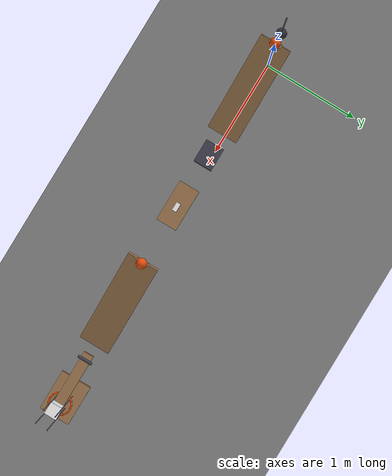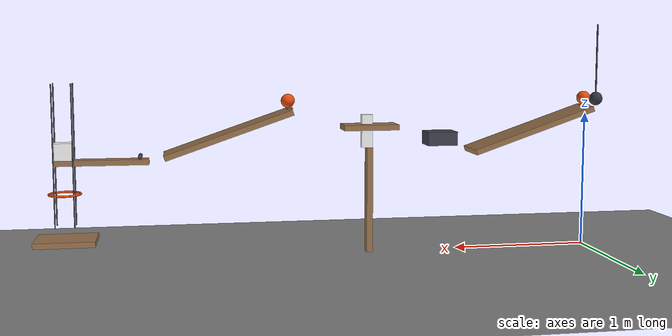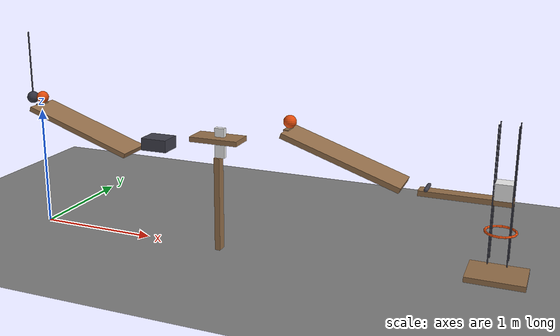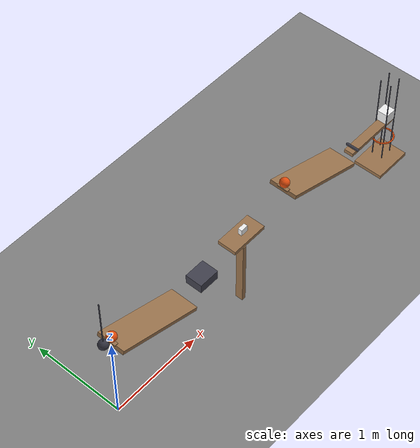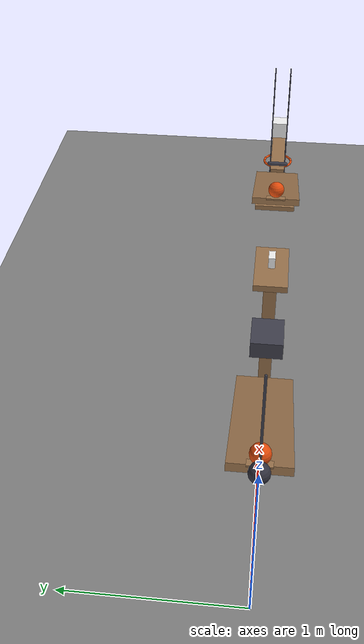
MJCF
<mujoco model="cascade_with_overhanging_domino_support">
  <compiler angle="radian"/>
  <option timestep="0.002"/>
  <worldbody>
    <geom name="floor" type="plane" size="10 10 0.1" friction="0.68 0.005 0.0001"/>
    <body name="ramp1">
      <geom name="ramp1" type="box" pos="0.44261 0 0.885734" size="0.475 0.15 0.02" euler="0 0.331612 0" friction="0.68 0.005 0.0001" solref="0.01 1" rgba="0.6 0.45 0.3 1"/>
    </body>
    <body name="ball1 starting ledge">
      <geom name="ball1 starting ledge" type="box" pos="0.008 0 1.06" size="0.019 0.06 0.005" friction="0.68 0.005 0.0001" solref="0.01 1" rgba="0.6 0.45 0.3 1"/>
    </body>
    <body name="ball1" pos="0.016278 0 1.115">
      <freejoint/>
      <geom name="ball1" type="sphere" pos="0 0 0" size="0.05" mass="0.2" condim="6" friction="0.68 0.005 0.0001" solref="0.01 1" rgba="0.9 0.3 0.05 1"/>
    </body>
    <body name="pendulum1" pos="-0.083722 0 1.65657">
      <joint name="pendulum1_hinge" type="hinge" pos="0 0 0" axis="0 1 0" limited="true" range="-1.39626 0.959931" damping="0.04"/>
      <geom name="pendulum1" type="sphere" pos="0 0 -0.55" size="0.05" mass="0.35" friction="0.68 0.005 0.0001" solref="0.01 1" rgba="0.2 0.2 0.25 1"/>
      <geom name="pendulum1 rod" type="capsule" size="0.006" fromto="0 0 0 0 0 -0.5" mass="0.05" friction="0.68 0.005 0.0001" solref="0.01 1" rgba="0.25 0.25 0.3 1"/>
    </body>
    <body name="cart1" pos="1.12824 100 0.83">
      <joint name="cart1_guide_approximation" type="hinge" pos="0 0 0" axis="0 0 1" limited="true" range="0 0.0043" damping="2000"/>
      <geom name="cart1" type="box" pos="0 -100 0" size="0.11 0.09 0.05" mass="0.5" friction="0.68 0.005 0.0001" solref="0.01 1" rgba="0.25 0.25 0.3 1"/>
    </body>
    <body name="domino support">
      <geom name="domino support" type="box" pos="1.66074 0 0.385" size="0.0225 0.04 0.385" friction="0.68 0.005 0.0001" solref="0.01 1" rgba="0.6 0.45 0.3 1"/>
    </body>
    <body name="domino1" pos="1.67824 0 0.89">
      <freejoint/>
      <geom name="domino1" type="box" pos="0 0 0" size="0.04 0.02 0.12" mass="0.25" friction="0.68 0.005 0.0001" solref="0.01 1" rgba="0.95 0.95 0.95 1"/>
    </body>
    <body name="flap1" pos="1.85824 0 0.92">
      <joint name="flap1_hinge" type="hinge" pos="0 0 0" axis="0 1 0" limited="true" range="1.55334 2.68781" damping="0.04"/>
      <geom name="flap1" type="box" pos="-0.2 0 0" size="0.2 0.1 0.02" mass="0.3" friction="0.68 0.005 0.0001" solref="0.01 1" rgba="0.6 0.45 0.3 1"/>
    </body>
    <body name="ramp2">
      <geom name="ramp2" type="box" pos="2.68133 0 0.885734" size="0.475 0.15 0.02" euler="0 0.331612 0" friction="0.68 0.005 0.0001" solref="0.01 1" rgba="0.6 0.45 0.3 1"/>
    </body>
    <body name="ball2 starting ledge">
      <geom name="ball2 starting ledge" type="box" pos="2.243 0 1.06" size="0.019 0.06 0.005" friction="0.68 0.005 0.0001" solref="0.01 1" rgba="0.6 0.45 0.3 1"/>
    </body>
    <body name="ball2" pos="2.255 0 1.115">
      <freejoint/>
      <geom name="ball2" type="sphere" pos="0 0 0" size="0.05" mass="0.2" condim="6" friction="0.68 0.005 0.0001" solref="0.01 1" rgba="0.9 0.3 0.05 1"/>
    </body>
    <body name="seesaw1" pos="3.56196 0 0.7">
      <joint name="seesaw1_hinge" type="hinge" pos="0 0 0" axis="0 1 0" limited="true" range="-0.698132 0" stiffness="0.136" springref="-6.28319" damping="0.04"/>
      <geom name="seesaw1" type="box" pos="0 0 0" size="0.325 0.05 0.02" mass="0.55" friction="0.68 0.005 0.0001" solref="0.01 1" rgba="0.6 0.45 0.3 1"/>
      <geom name="seesaw catch lip" type="capsule" size="0.015" fromto="-0.265 0.06 0.035 -0.265 -0.06 0.035" mass="0.001" friction="0.68 0.005 0.0001" solref="0.01 1" rgba="0.25 0.25 0.3 1"/>
    </body>
    <body name="block1" pos="3.81696 0 0.78">
      <freejoint/>
      <geom name="block1" type="box" pos="0 0 0" size="0.06 0.06 0.06" mass="0.35" friction="0.68 0.005 0.0001" solref="0.01 1" rgba="0.95 0.95 0.95 1"/>
    </body>
    <body name="block guide near left">
      <geom name="block guide near left" type="box" pos="3.75096 0.058 0.75" size="0.004 0.004 0.5" friction="0.68 0.005 0.0001" solref="0.01 1" rgba="0.25 0.25 0.3 1"/>
    </body>
    <body name="block guide near right">
      <geom name="block guide near right" type="box" pos="3.75096 -0.058 0.75" size="0.004 0.004 0.5" friction="0.68 0.005 0.0001" solref="0.01 1" rgba="0.25 0.25 0.3 1"/>
    </body>
    <body name="block guide far left">
      <geom name="block guide far left" type="box" pos="3.88296 0.058 0.75" size="0.004 0.004 0.5" friction="0.68 0.005 0.0001" solref="0.01 1" rgba="0.25 0.25 0.3 1"/>
    </body>
    <body name="block guide far right">
      <geom name="block guide far right" type="box" pos="3.88296 -0.058 0.75" size="0.004 0.004 0.5" friction="0.68 0.005 0.0001" solref="0.01 1" rgba="0.25 0.25 0.3 1"/>
    </body>
    <body name="ring1">
      <geom name="ring1_00" type="capsule" size="0.008" fromto="3.92496 0 0.48 3.91674 0.0413298 0.48" friction="0.68 0.005 0.0001" solref="0.01 1" rgba="0.9 0.3 0.05 1"/>
      <geom name="ring1_01" type="capsule" size="0.008" fromto="3.91674 0.0413298 0.48 3.89333 0.0763675 0.48" friction="0.68 0.005 0.0001" solref="0.01 1" rgba="0.9 0.3 0.05 1"/>
      <geom name="ring1_02" type="capsule" size="0.008" fromto="3.89333 0.0763675 0.48 3.85829 0.099779 0.48" friction="0.68 0.005 0.0001" solref="0.01 1" rgba="0.9 0.3 0.05 1"/>
      <geom name="ring1_03" type="capsule" size="0.008" fromto="3.85829 0.099779 0.48 3.81696 0.108 0.48" friction="0.68 0.005 0.0001" solref="0.01 1" rgba="0.9 0.3 0.05 1"/>
      <geom name="ring1_04" type="capsule" size="0.008" fromto="3.81696 0.108 0.48 3.77563 0.099779 0.48" friction="0.68 0.005 0.0001" solref="0.01 1" rgba="0.9 0.3 0.05 1"/>
      <geom name="ring1_05" type="capsule" size="0.008" fromto="3.77563 0.099779 0.48 3.7406 0.0763675 0.48" friction="0.68 0.005 0.0001" solref="0.01 1" rgba="0.9 0.3 0.05 1"/>
      <geom name="ring1_06" type="capsule" size="0.008" fromto="3.7406 0.0763675 0.48 3.71718 0.0413298 0.48" friction="0.68 0.005 0.0001" solref="0.01 1" rgba="0.9 0.3 0.05 1"/>
      <geom name="ring1_07" type="capsule" size="0.008" fromto="3.71718 0.0413298 0.48 3.70896 1.32262e-17 0.48" friction="0.68 0.005 0.0001" solref="0.01 1" rgba="0.9 0.3 0.05 1"/>
      <geom name="ring1_08" type="capsule" size="0.008" fromto="3.70896 1.32262e-17 0.48 3.71718 -0.0413298 0.48" friction="0.68 0.005 0.0001" solref="0.01 1" rgba="0.9 0.3 0.05 1"/>
      <geom name="ring1_09" type="capsule" size="0.008" fromto="3.71718 -0.0413298 0.48 3.7406 -0.0763675 0.48" friction="0.68 0.005 0.0001" solref="0.01 1" rgba="0.9 0.3 0.05 1"/>
      <geom name="ring1_10" type="capsule" size="0.008" fromto="3.7406 -0.0763675 0.48 3.77563 -0.099779 0.48" friction="0.68 0.005 0.0001" solref="0.01 1" rgba="0.9 0.3 0.05 1"/>
      <geom name="ring1_11" type="capsule" size="0.008" fromto="3.77563 -0.099779 0.48 3.81696 -0.108 0.48" friction="0.68 0.005 0.0001" solref="0.01 1" rgba="0.9 0.3 0.05 1"/>
      <geom name="ring1_12" type="capsule" size="0.008" fromto="3.81696 -0.108 0.48 3.85829 -0.099779 0.48" friction="0.68 0.005 0.0001" solref="0.01 1" rgba="0.9 0.3 0.05 1"/>
      <geom name="ring1_13" type="capsule" size="0.008" fromto="3.85829 -0.099779 0.48 3.89333 -0.0763675 0.48" friction="0.68 0.005 0.0001" solref="0.01 1" rgba="0.9 0.3 0.05 1"/>
      <geom name="ring1_14" type="capsule" size="0.008" fromto="3.89333 -0.0763675 0.48 3.91674 -0.0413298 0.48" friction="0.68 0.005 0.0001" solref="0.01 1" rgba="0.9 0.3 0.05 1"/>
      <geom name="ring1_15" type="capsule" size="0.008" fromto="3.91674 -0.0413298 0.48 3.92496 -2.64524e-17 0.48" friction="0.68 0.005 0.0001" solref="0.01 1" rgba="0.9 0.3 0.05 1"/>
    </body>
    <body name="door1" pos="3.60696 0 0.15">
      <joint name="door1_hinge" type="hinge" pos="0 0 0" axis="0 1 0" limited="true" range="0 0.261799" stiffness="4" springref="-0.261799" damping="0.04"/>
      <geom name="door1" type="box" pos="0.21 0 0" size="0.21 0.16 0.02" mass="0.45" friction="0.68 0.005 0.0001" solref="0.01 1" rgba="0.6 0.45 0.3 1"/>
    </body>
  </worldbody>
  <keyframe>
    <key name="start" qpos="0.016278 0 1.115 1 0 0 0 0.959931 0 1.67824 0 0.89 1 0 0 0 1.55334 2.255 0 1.115 1 0 0 0 0 3.81696 0 0.78 1 0 0 0 0" qvel="0 0 0 0 0 0 0 0 0 0 0 0 0 0 0 0 0 0 0 0 0 0 0 0 0 0 0 0 0"/>
  </keyframe>
</mujoco>
